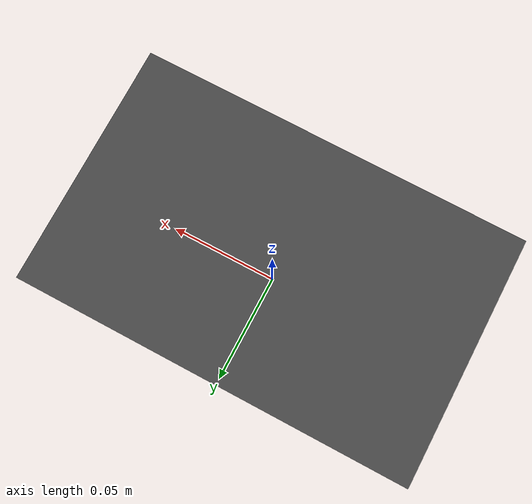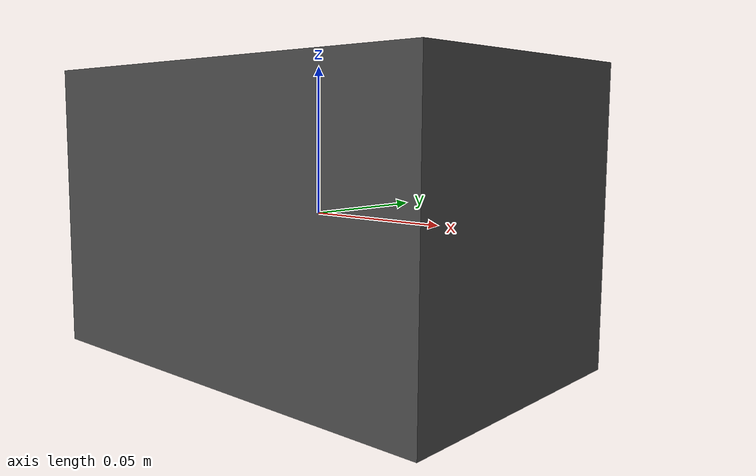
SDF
<?xml version="1.0"?>
<sdf version="1.9">
  <model name="camera_rig">
    <static>true</static>
    <link name="camera_link">
      <inertial>
        <mass>0.1</mass>
        <inertia>
          <ixx>1e-5</ixx><iyy>1e-5</iyy><izz>1e-5</izz>
          <ixy>0</ixy><ixz>0</ixz><iyz>0</iyz>
        </inertia>
      </inertial>

      <visual name="mount_box">
        <geometry>
          <box><size>0.16 0.10 0.10</size></box>
        </geometry>
        <material>
          <ambient>0.3 0.3 0.3 1</ambient>
          <diffuse>0.3 0.3 0.3 1</diffuse>
        </material>
      </visual>

      <visual name="lens">
        <pose>0 0 -0.05 0 0 0</pose>
        <geometry>
          <cylinder><radius>0.02</radius><length>0.02</length></cylinder>
        </geometry>
        <material>
          <ambient>0 0.5 1 1</ambient>
          <diffuse>0 0.5 1 1</diffuse>
        </material>
      </visual>

      <sensor name="rgbd_camera" type="rgbd_camera">
        <pose>0 0 -0.07 0 1.5708 1.5708</pose>
        <camera>
          <horizontal_fov>0.7854</horizontal_fov>
          <image>
            <width>640</width>
            <height>480</height>
          </image>
          <clip>
            <near>0.05</near>
            <far>10</far>
          </clip>
        </camera>
        <always_on>1</always_on>
        <update_rate>20</update_rate>
        <visualize>true</visualize>
        <topic>rgbd_camera</topic>
      </sensor>
    </link>
  </model>
</sdf>
